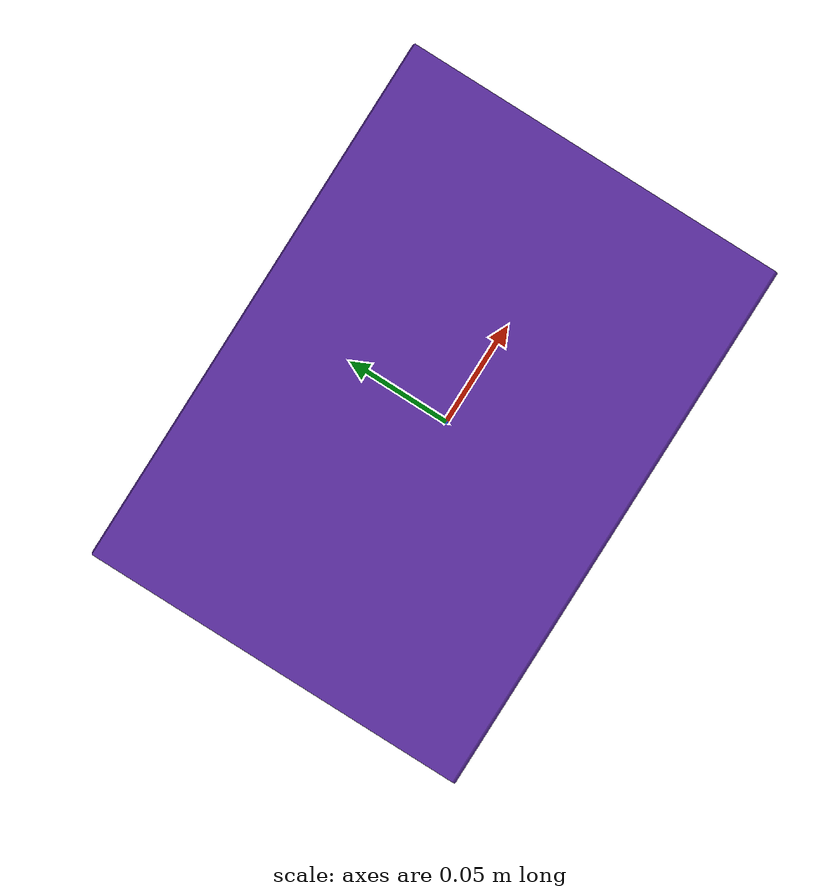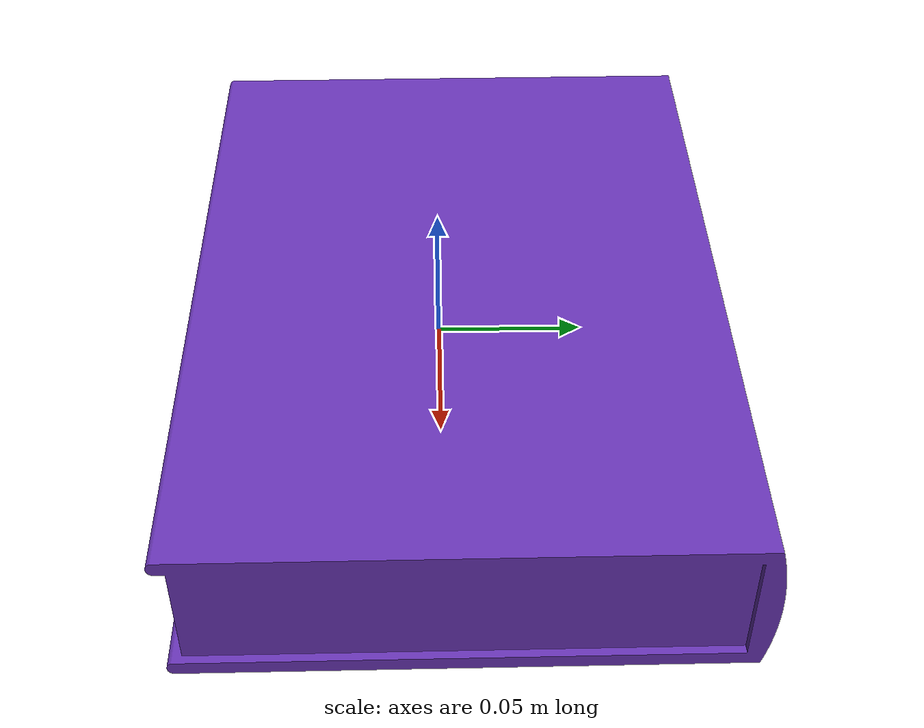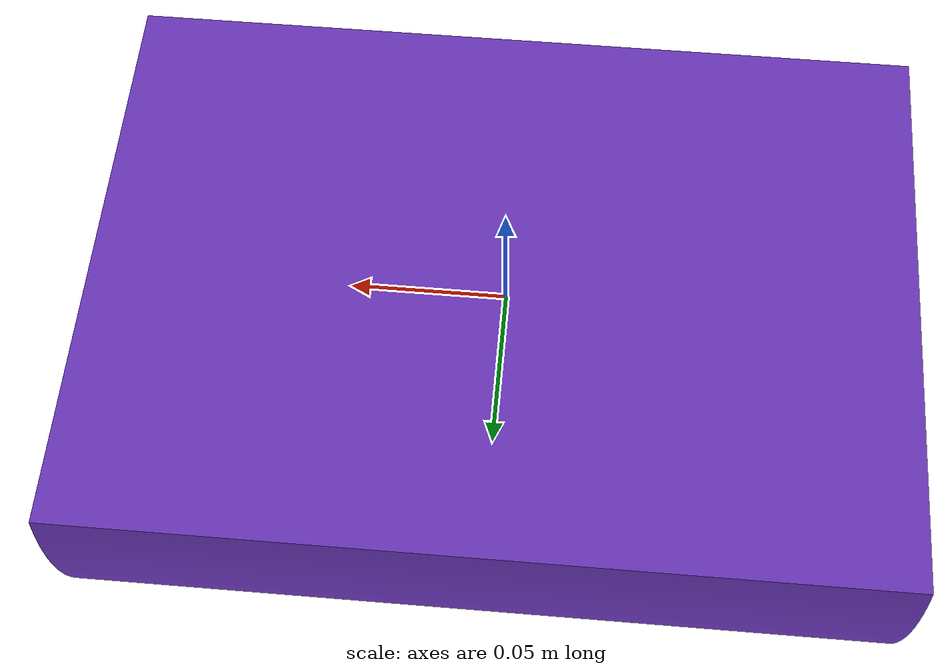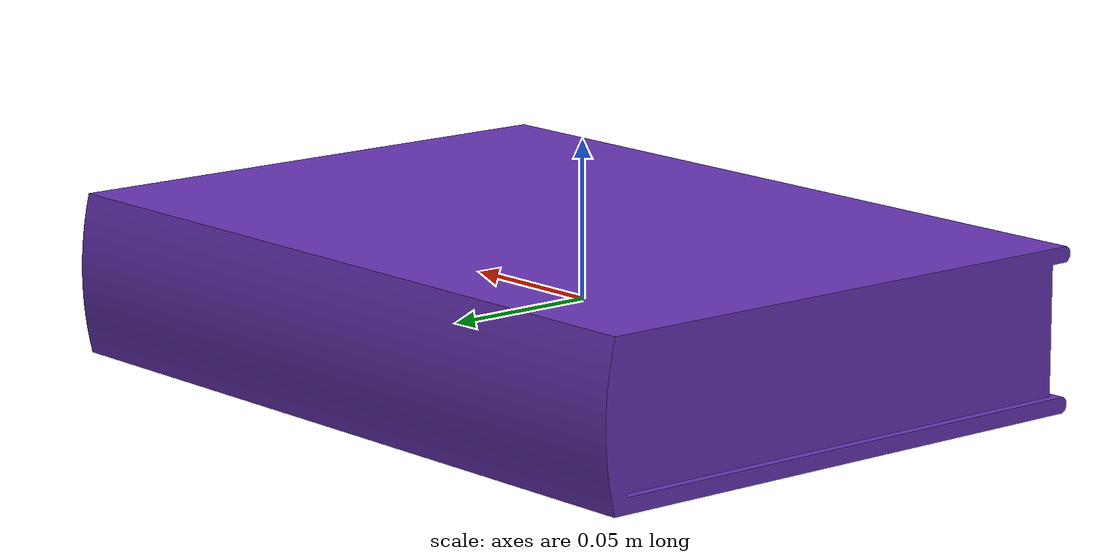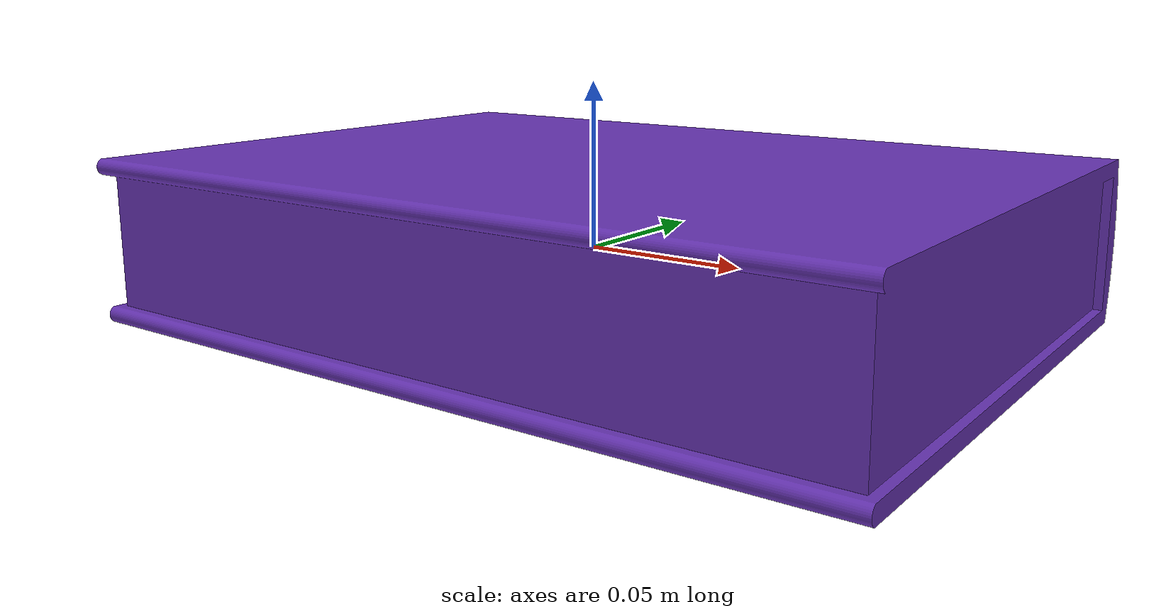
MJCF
<mujoco model="top_watertight_tiny">
  <default>
    <default group="2" type="mesh" contype="0" conaffinity="0">
      <geom group="2" type="mesh" contype="0" conaffinity="0"/>
    </default>
    <default group="3" type="mesh">
      <geom group="3" type="mesh"/>
    </default>
  </default>
  <asset>
    <mesh file="top_watertight_tiny.obj"/>
    <mesh file="top_watertight_tiny_collision_0.obj"/>
    <mesh file="top_watertight_tiny_collision_1.obj"/>
  </asset>
  <worldbody>
    <body name="top_watertight_tiny">
      <freejoint/>
      <geom mesh="top_watertight_tiny" group="2" type="mesh" rgba="0.4 0.2 0.7 1" contype="0" conaffinity="0"/>
      <geom mesh="top_watertight_tiny_collision_0" rgba="0.9012546359918974 0.45783732725358117 0.3843272259663454 1" group="3" type="mesh"/>
      <geom mesh="top_watertight_tiny_collision_1" rgba="0.5070608629465976 0.6181572718652457 0.04829054372434827 1" group="3" type="mesh"/>
    </body>
  </worldbody>
</mujoco>
